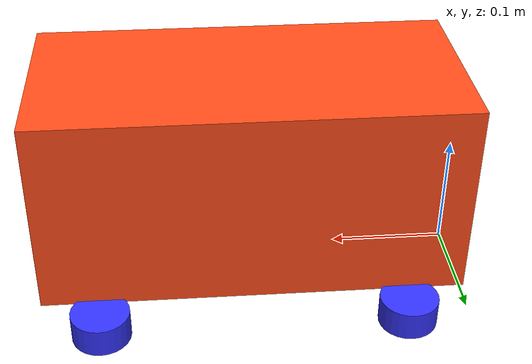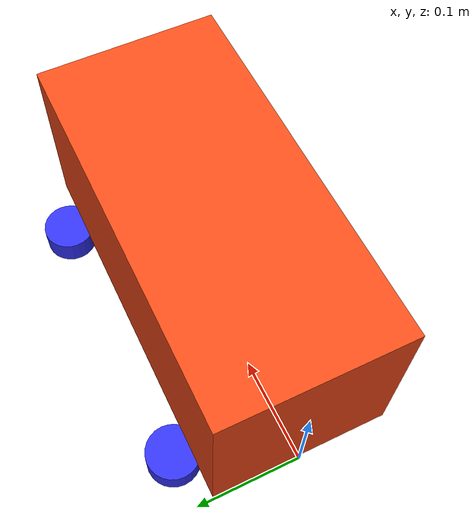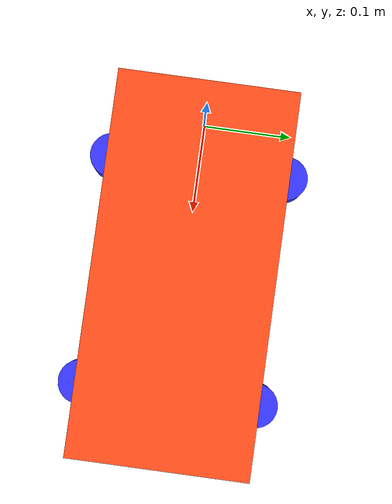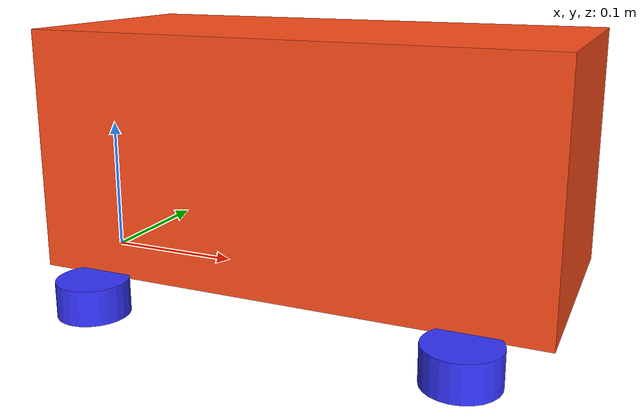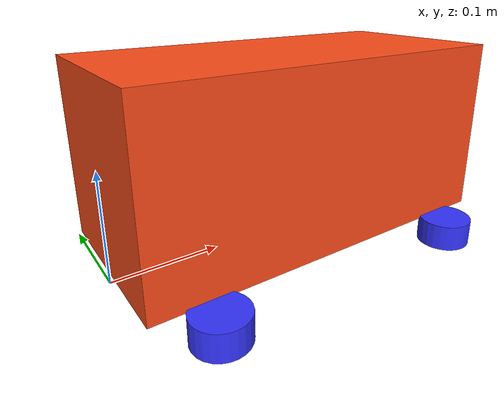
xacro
<?xml version="1.0"?>
<robot xmlns:xacro="http://www.ros.org/wiki/xacro" >

    <xacro:property name="chassis_length" value="0.360"/>
    <xacro:property name="chassis_width" value="0.170"/>
    <xacro:property name="chassis_height" value="0.170"/>
    <xacro:property name="chassis_mass" value="1.0"/>

    <xacro:property name="wheel_radius" value="0.025"/>
    <xacro:property name="wheel_thickness" value="0.025"/>
    <xacro:property name="wheel_mass" value="0.05"/>

    <xacro:property name="front_wheel_offset_x" value="0.05"/>
    <xacro:property name="front_wheel_offset_y" value="0.1"/>
    <xacro:property name="front_wheel_offset_z" value="0.01"/>

    <xacro:property name="back_wheel_offset_x" value="0.310"/>

    <material name="white">
        <color rgba="1 1 1 1" />
    </material>

    <material name="orange">
        <color rgba="1 0.3 0.1 1"/>
    </material>

    <material name="blue">
        <color rgba="0.2 0.2 1 1"/>
    </material>

    <material name="black">
        <color rgba="0 0 0 1"/>
    </material>

    <material name="red">
        <color rgba="1 0 0 1"/>
    </material>

    <!-- BASE LINK -->

    <link name="base_link"></link>

    <!-- BASE_FOOTPRINT LINK -->

    <joint name="base_footprint_joint" type="fixed">
        <parent link="base_link"/>
        <child link="base_footprint"/>
        <origin xyz="0 0 0" rpy="0 0 0"/>
    </joint>

    <link name="base_footprint">
    </link>

    <!-- CHASSIS LINK -->

    <joint name="chassis_joint" type="fixed">
        <parent link="base_link"/>
        <child link="chassis"/>
        <origin xyz="0 0 ${front_wheel_offset_z}"/>
    </joint>

    <link name="chassis">
        <visual>
            <origin xyz="${chassis_length/2} 0 ${chassis_height/2}"/>
            <geometry>
                <box size="${chassis_length} ${chassis_width} ${chassis_height}"/>
            </geometry>
            <material name="orange"/>
        </visual>
        <collision>
            <origin xyz="${chassis_length/2} 0 ${chassis_height/2}"/>
            <geometry>
                <box size="${chassis_length} ${chassis_width} ${chassis_height}"/>
            </geometry>
        </collision>
    </link>

    <!-- FRONT LEFT WHEEL LINK -->

    <joint name="front_left_wheel_joint" type="continuous">
        <parent link="base_link"/>
        <child link="front_left_wheel"/>
        <origin xyz="${front_wheel_offset_x} ${-front_wheel_offset_y} 0" rpy="${pi} 0 ${pi}" />
        <axis xyz="0 0 1"/>
    </joint>

    <link name="front_left_wheel">
        <visual>
            <geometry>
                <cylinder radius="${wheel_radius}" length="${wheel_thickness}"/>
            </geometry>
            <material name="blue"/>
        </visual>
        <collision>
            <geometry>
                <sphere radius="${wheel_radius}"/>
            </geometry>
        </collision>
    </link>

    <!-- FRONT RIGHT WHEEL LINK -->

    <joint name="front_right_wheel_joint" type="continuous">
        <parent link="base_link"/>
        <child link="front_right_wheel"/>
        <origin xyz="${front_wheel_offset_x} ${front_wheel_offset_y} 0" rpy="${pi} 0 ${pi}" />
        <axis xyz="0 0 -1"/>
    </joint>

    <link name="front_right_wheel">
        <visual>
            <geometry>
                <cylinder radius="${wheel_radius}" length="${wheel_thickness}"/>
            </geometry>
            <material name="blue"/>
        </visual>
        <collision>
            <geometry>
                <sphere radius="${wheel_radius}"/>
            </geometry>
        </collision>
    </link>

    <!-- BACK LEFT WHEEL LINK -->
    <joint name="back_left_wheel_joint" type="continuous">
        <parent link="base_link"/>
        <child link="back_left_wheel"/>
        <origin xyz="${back_wheel_offset_x} ${-front_wheel_offset_y} 0" rpy="${pi} 0 ${pi}" />
        <axis xyz="0 0 1"/>
    </joint>

    <link name="back_left_wheel">
        <visual>
            <geometry>
                <cylinder radius="${wheel_radius}" length="${wheel_thickness}"/>
            </geometry>
            <material name="blue"/>
        </visual>
        <collision>
            <geometry>
                <sphere radius="${wheel_radius}"/>
            </geometry>
        </collision>
    </link>

    <!-- BACK RIGHT WHEEL LINK -->
    <joint name="back_right_wheel_joint" type="continuous">
        <parent link="base_link"/>
        <child link="back_right_wheel"/>
        <origin xyz="${back_wheel_offset_x} ${front_wheel_offset_y} 0" rpy="${pi} 0 ${pi}" />
        <axis xyz="0 0 -1"/>
    </joint>

    <link name="back_right_wheel">
        <visual>
            <geometry>
                <cylinder radius="${wheel_radius}" length="${wheel_thickness}"/>
            </geometry>
            <material name="blue"/>
        </visual>
        <collision>
            <geometry>
                <sphere radius="${wheel_radius}"/>
            </geometry>
        </collision>
    </link>

</robot>
